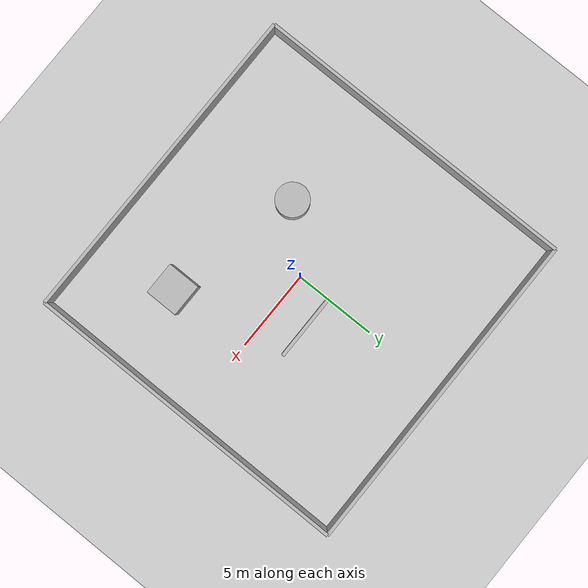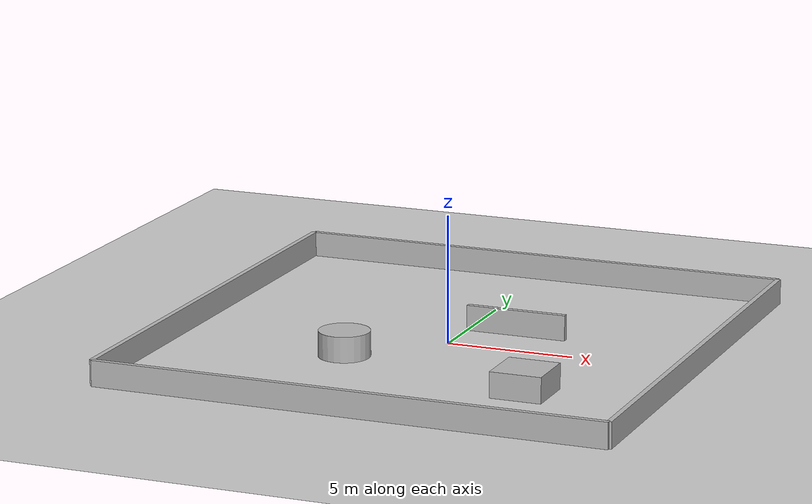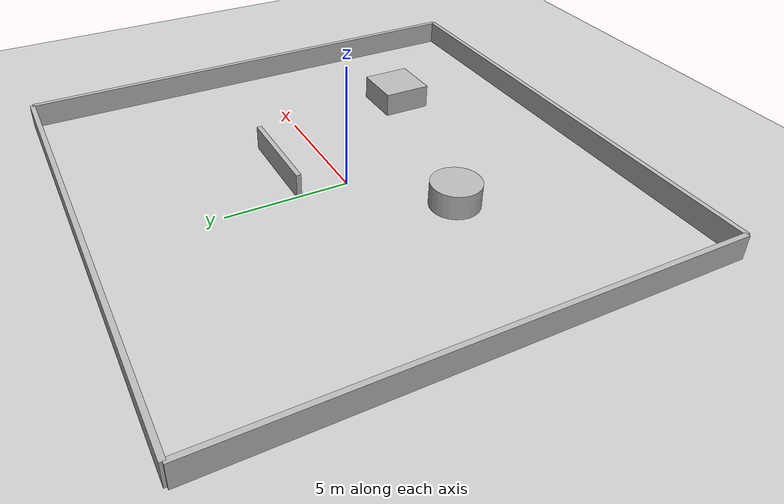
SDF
<?xml version="1.0"?>
<sdf version="1.10">
  <world name="maze_world">
    <physics name="1ms" type="ignored">
      <max_step_size>0.001</max_step_size>
      <real_time_factor>1.0</real_time_factor>
    </physics>

    <plugin filename="gz-sim-physics-system" name="gz::sim::systems::Physics"/>
    <plugin filename="gz-sim-user-commands-system" name="gz::sim::systems::UserCommands"/>
    <plugin filename="gz-sim-scene-broadcaster-system" name="gz::sim::systems::SceneBroadcaster"/>
    <plugin filename="gz-sim-sensors-system" name="gz::sim::systems::Sensors">
      <render_engine>ogre2</render_engine>
    </plugin>

    <light type="directional" name="sun">
      <cast_shadows>true</cast_shadows>
      <pose>0 0 10 0 0 0</pose>
      <diffuse>0.95 0.95 0.95 1</diffuse>
      <specular>0.25 0.25 0.25 1</specular>
      <direction>-0.5 0.1 -0.9</direction>
    </light>

    <model name="ground_plane">
      <static>true</static>
      <link name="link">
        <collision name="collision">
          <geometry>
            <plane>
              <normal>0 0 1</normal>
              <size>100 100</size>
            </plane>
          </geometry>
        </collision>
        <visual name="visual">
          <geometry>
            <plane>
              <normal>0 0 1</normal>
              <size>100 100</size>
            </plane>
          </geometry>
          <material>
            <ambient>0.8 0.8 0.8 1</ambient>
            <diffuse>0.8 0.8 0.8 1</diffuse>
          </material>
        </visual>
      </link>
    </model>

    <!-- Outer walls -->
    <model name="wall_1"><static>true</static><pose>0 10 0.5 0 0 0</pose><link name="link"><collision name="c"><geometry><box><size>20 0.2 1</size></box></geometry></collision><visual name="v"><geometry><box><size>20 0.2 1</size></box></geometry></visual></link></model>
    <model name="wall_2"><static>true</static><pose>0 -10 0.5 0 0 0</pose><link name="link"><collision name="c"><geometry><box><size>20 0.2 1</size></box></geometry></collision><visual name="v"><geometry><box><size>20 0.2 1</size></box></geometry></visual></link></model>
    <model name="wall_3"><static>true</static><pose>10 0 0.5 0 0 0</pose><link name="link"><collision name="c"><geometry><box><size>0.2 20 1</size></box></geometry></collision><visual name="v"><geometry><box><size>0.2 20 1</size></box></geometry></visual></link></model>
    <model name="wall_4"><static>true</static><pose>-10 0 0.5 0 0 0</pose><link name="link"><collision name="c"><geometry><box><size>0.2 20 1</size></box></geometry></collision><visual name="v"><geometry><box><size>0.2 20 1</size></box></geometry></visual></link></model>

    <!-- Inner obstacles -->
    <model name="obs_1"><static>true</static><pose>2 2 0.5 0 0 0</pose><link name="link"><collision name="c"><geometry><box><size>4 0.2 1</size></box></geometry></collision><visual name="v"><geometry><box><size>4 0.2 1</size></box></geometry></visual></link></model>
    <model name="obs_2"><static>true</static><pose>-3 -3 0.5 0 0 0</pose><link name="link"><collision name="c"><geometry><cylinder><radius>1</radius><length>1</length></cylinder></geometry></collision><visual name="v"><geometry><cylinder><radius>1</radius><length>1</length></cylinder></geometry></visual></link></model>
    <model name="obs_3"><static>true</static><pose>5 -5 0.5 0 0 0</pose><link name="link"><collision name="c"><geometry><box><size>2 2 1</size></box></geometry></collision><visual name="v"><geometry><box><size>2 2 1</size></box></geometry></visual></link></model>
  </world>
</sdf>
